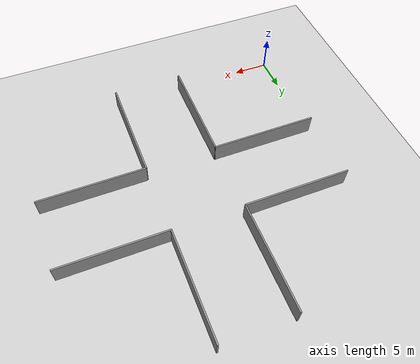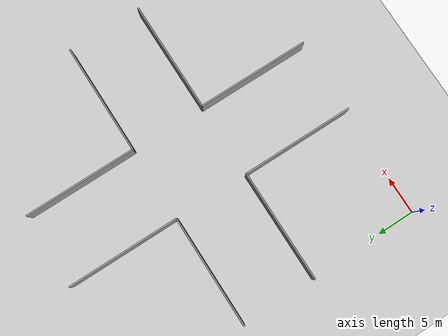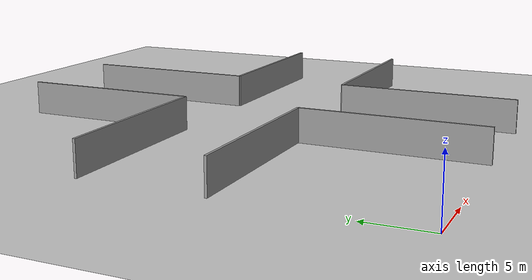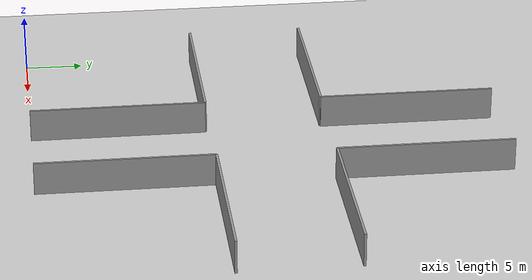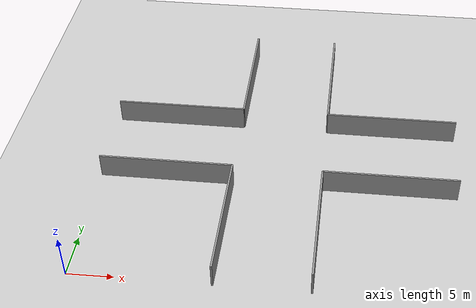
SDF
<?xml version="1.0" ?>

    <!-- this file is auto generated using pedsim_gazebo_plugin pkg -->
    <sdf version="1.5">
      <world name="default">

        <!-- default camera perspective -->
        <gui>
          <camera name="gzclient_camera">
            <pose>14.5 15 40 0 1.57 0</pose>
          </camera>
        </gui>

      <!-- Ground Plane -->

      <include>
        <uri>model://ground_plane</uri>
      </include>

      <include>
        <uri>model://sun</uri>
      </include>

     <model name='grey_wall_1'>
      <static>1</static>
      <link name='link'>

	  <pose frame=''>15.0 7.5  1.4 0 0 1.57</pose>

        <collision name='collision'>
          <geometry>
            <box>

	     <size> 15.0 .2  2.8 </size>

      	   </box>
          </geometry>
          <max_contacts>10</max_contacts>
          <surface>
            <contact>
              <ode/>
            </contact>
            <bounce/>
            <friction>
              <torsional>
                <ode/>
              </torsional>
              <ode/>
            </friction>
          </surface>
        </collision>
        <visual name='visual'>
          <cast_shadows>0</cast_shadows>
          <geometry>
            <box>

	     <size> 15.0 .2  2.8 </size>

      	   </box>
       </geometry>
          <material>
            <script>
              <uri>model://grey_wall/materials/scripts</uri>
              <uri>model://grey_wall/materials/textures</uri>
              <name>vrc/grey_wall</name>
            </script>
          </material>
        </visual>
        <self_collide>0</self_collide>
        <enable_wind>0</enable_wind>
        <kinematic>0</kinematic>
      </link>
    </model>

     <model name='grey_wall_2'>
      <static>1</static>
      <link name='link'>

	  <pose frame=''>7.5 15.0  1.4 0 0 -0.0</pose>

        <collision name='collision'>
          <geometry>
            <box>

	     <size> 15.0 .2  2.8 </size>

      	   </box>
          </geometry>
          <max_contacts>10</max_contacts>
          <surface>
            <contact>
              <ode/>
            </contact>
            <bounce/>
            <friction>
              <torsional>
                <ode/>
              </torsional>
              <ode/>
            </friction>
          </surface>
        </collision>
        <visual name='visual'>
          <cast_shadows>0</cast_shadows>
          <geometry>
            <box>

	     <size> 15.0 .2  2.8 </size>

      	   </box>
       </geometry>
          <material>
            <script>
              <uri>model://grey_wall/materials/scripts</uri>
              <uri>model://grey_wall/materials/textures</uri>
              <name>vrc/grey_wall</name>
            </script>
          </material>
        </visual>
        <self_collide>0</self_collide>
        <enable_wind>0</enable_wind>
        <kinematic>0</kinematic>
      </link>
    </model>

     <model name='grey_wall_3'>
      <static>1</static>
      <link name='link'>

	  <pose frame=''>7.5 25.0  1.4 0 0 0.0</pose>

        <collision name='collision'>
          <geometry>
            <box>

	     <size> 15.0 .2  2.8 </size>

      	   </box>
          </geometry>
          <max_contacts>10</max_contacts>
          <surface>
            <contact>
              <ode/>
            </contact>
            <bounce/>
            <friction>
              <torsional>
                <ode/>
              </torsional>
              <ode/>
            </friction>
          </surface>
        </collision>
        <visual name='visual'>
          <cast_shadows>0</cast_shadows>
          <geometry>
            <box>

	     <size> 15.0 .2  2.8 </size>

      	   </box>
       </geometry>
          <material>
            <script>
              <uri>model://grey_wall/materials/scripts</uri>
              <uri>model://grey_wall/materials/textures</uri>
              <name>vrc/grey_wall</name>
            </script>
          </material>
        </visual>
        <self_collide>0</self_collide>
        <enable_wind>0</enable_wind>
        <kinematic>0</kinematic>
      </link>
    </model>

     <model name='grey_wall_4'>
      <static>1</static>
      <link name='link'>

	  <pose frame=''>15.0 32.5  1.4 0 0 1.57</pose>

        <collision name='collision'>
          <geometry>
            <box>

	     <size> 15.0 .2  2.8 </size>

      	   </box>
          </geometry>
          <max_contacts>10</max_contacts>
          <surface>
            <contact>
              <ode/>
            </contact>
            <bounce/>
            <friction>
              <torsional>
                <ode/>
              </torsional>
              <ode/>
            </friction>
          </surface>
        </collision>
        <visual name='visual'>
          <cast_shadows>0</cast_shadows>
          <geometry>
            <box>

	     <size> 15.0 .2  2.8 </size>

      	   </box>
       </geometry>
          <material>
            <script>
              <uri>model://grey_wall/materials/scripts</uri>
              <uri>model://grey_wall/materials/textures</uri>
              <name>vrc/grey_wall</name>
            </script>
          </material>
        </visual>
        <self_collide>0</self_collide>
        <enable_wind>0</enable_wind>
        <kinematic>0</kinematic>
      </link>
    </model>

     <model name='grey_wall_5'>
      <static>1</static>
      <link name='link'>

	  <pose frame=''>25.0 32.5  1.4 0 0 1.57</pose>

        <collision name='collision'>
          <geometry>
            <box>

	     <size> 15.0 .2  2.8 </size>

      	   </box>
          </geometry>
          <max_contacts>10</max_contacts>
          <surface>
            <contact>
              <ode/>
            </contact>
            <bounce/>
            <friction>
              <torsional>
                <ode/>
              </torsional>
              <ode/>
            </friction>
          </surface>
        </collision>
        <visual name='visual'>
          <cast_shadows>0</cast_shadows>
          <geometry>
            <box>

	     <size> 15.0 .2  2.8 </size>

      	   </box>
       </geometry>
          <material>
            <script>
              <uri>model://grey_wall/materials/scripts</uri>
              <uri>model://grey_wall/materials/textures</uri>
              <name>vrc/grey_wall</name>
            </script>
          </material>
        </visual>
        <self_collide>0</self_collide>
        <enable_wind>0</enable_wind>
        <kinematic>0</kinematic>
      </link>
    </model>

     <model name='grey_wall_6'>
      <static>1</static>
      <link name='link'>

	  <pose frame=''>32.5 25.0  1.4 0 0 0.0</pose>

        <collision name='collision'>
          <geometry>
            <box>

	     <size> 15.0 .2  2.8 </size>

      	   </box>
          </geometry>
          <max_contacts>10</max_contacts>
          <surface>
            <contact>
              <ode/>
            </contact>
            <bounce/>
            <friction>
              <torsional>
                <ode/>
              </torsional>
              <ode/>
            </friction>
          </surface>
        </collision>
        <visual name='visual'>
          <cast_shadows>0</cast_shadows>
          <geometry>
            <box>

	     <size> 15.0 .2  2.8 </size>

      	   </box>
       </geometry>
          <material>
            <script>
              <uri>model://grey_wall/materials/scripts</uri>
              <uri>model://grey_wall/materials/textures</uri>
              <name>vrc/grey_wall</name>
            </script>
          </material>
        </visual>
        <self_collide>0</self_collide>
        <enable_wind>0</enable_wind>
        <kinematic>0</kinematic>
      </link>
    </model>

     <model name='grey_wall_7'>
      <static>1</static>
      <link name='link'>

	  <pose frame=''>32.5 15.0  1.4 0 0 -0.0</pose>

        <collision name='collision'>
          <geometry>
            <box>

	     <size> 15.0 .2  2.8 </size>

      	   </box>
          </geometry>
          <max_contacts>10</max_contacts>
          <surface>
            <contact>
              <ode/>
            </contact>
            <bounce/>
            <friction>
              <torsional>
                <ode/>
              </torsional>
              <ode/>
            </friction>
          </surface>
        </collision>
        <visual name='visual'>
          <cast_shadows>0</cast_shadows>
          <geometry>
            <box>

	     <size> 15.0 .2  2.8 </size>

      	   </box>
       </geometry>
          <material>
            <script>
              <uri>model://grey_wall/materials/scripts</uri>
              <uri>model://grey_wall/materials/textures</uri>
              <name>vrc/grey_wall</name>
            </script>
          </material>
        </visual>
        <self_collide>0</self_collide>
        <enable_wind>0</enable_wind>
        <kinematic>0</kinematic>
      </link>
    </model>

     <model name='grey_wall_8'>
      <static>1</static>
      <link name='link'>

	  <pose frame=''>25.0 7.5  1.4 0 0 1.57</pose>

        <collision name='collision'>
          <geometry>
            <box>

	     <size> 15.0 .2  2.8 </size>

      	   </box>
          </geometry>
          <max_contacts>10</max_contacts>
          <surface>
            <contact>
              <ode/>
            </contact>
            <bounce/>
            <friction>
              <torsional>
                <ode/>
              </torsional>
              <ode/>
            </friction>
          </surface>
        </collision>
        <visual name='visual'>
          <cast_shadows>0</cast_shadows>
          <geometry>
            <box>

	     <size> 15.0 .2  2.8 </size>

      	   </box>
       </geometry>
          <material>
            <script>
              <uri>model://grey_wall/materials/scripts</uri>
              <uri>model://grey_wall/materials/textures</uri>
              <name>vrc/grey_wall</name>
            </script>
          </material>
        </visual>
        <self_collide>0</self_collide>
        <enable_wind>0</enable_wind>
        <kinematic>0</kinematic>
      </link>
    </model>

            <plugin name="ActorPosesPlugin" filename="libActorPosesPlugin.so">
        </plugin>

      </world>
    </sdf>
